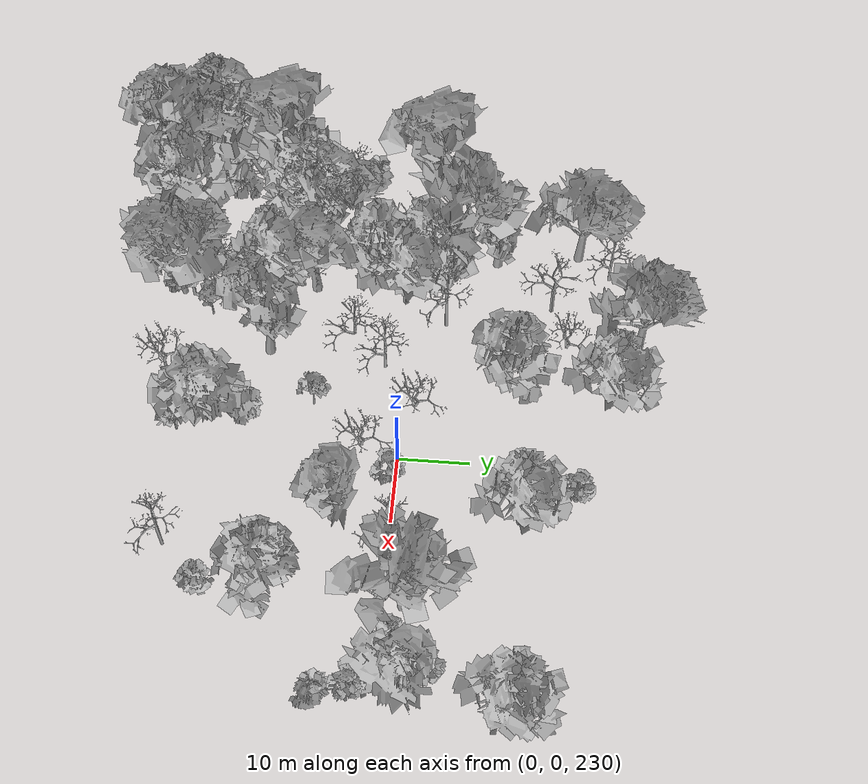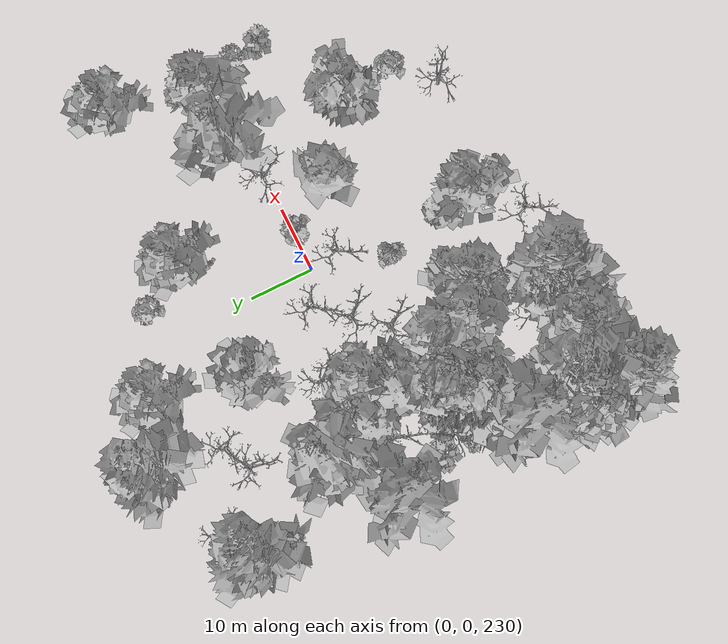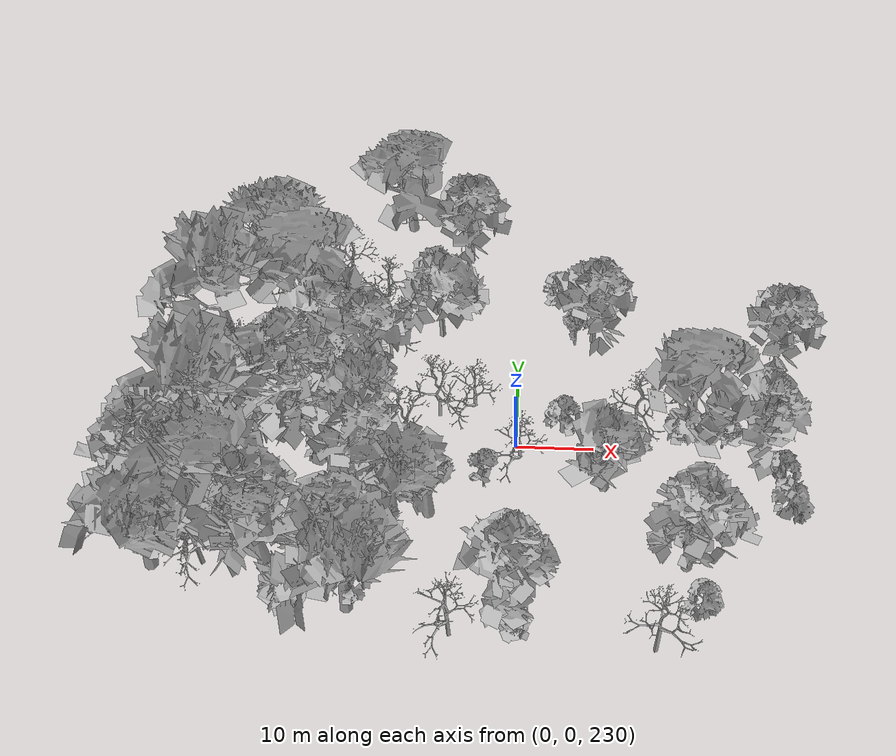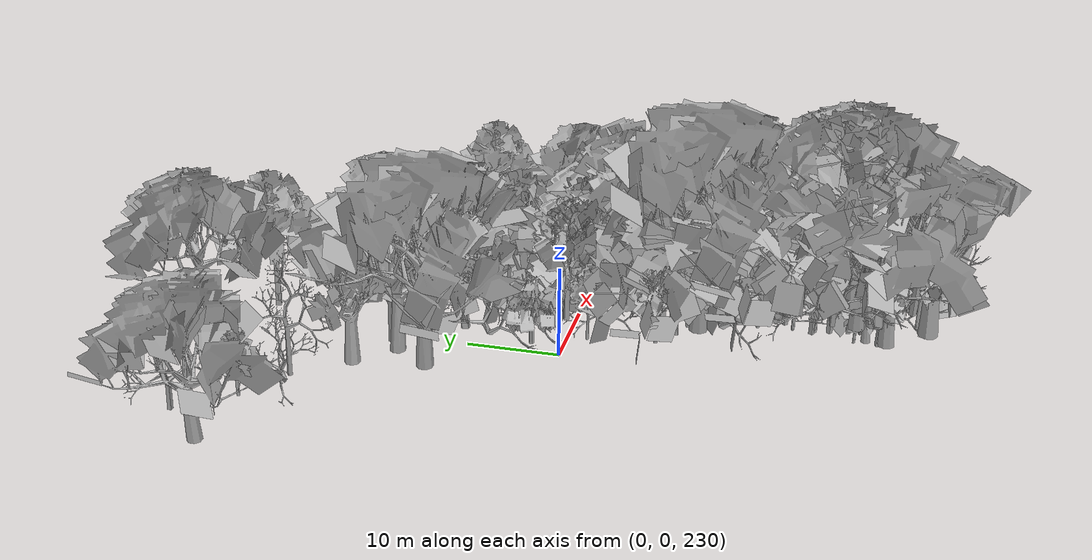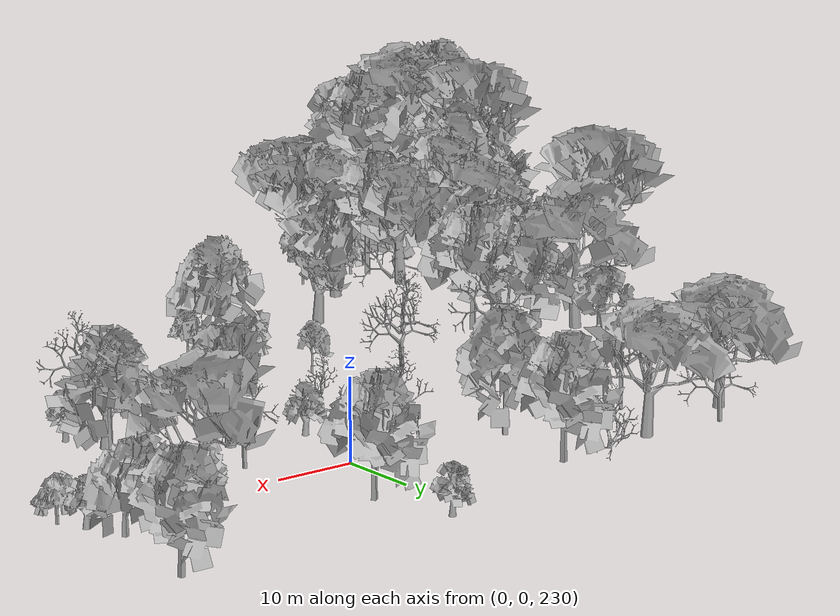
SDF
<sdf version="1.6">
 <world name="default">
  <light name="sun" type="directional">
   <pose>0 0 10 0 -0 0</pose>
   <diffuse>0.8 0.8 0.8 1</diffuse>
   <specular>0.2 0.2 0.2 1</specular>
   <attenuation>
    <range>1000</range>
    <constant>0.9</constant>
    <linear>0.01</linear>
    <quadratic>0.001</quadratic>
   </attenuation>
   <direction>-0.5 0.1 -0.9</direction>
  </light>
  <scene>
   <sky><clouds><speed>12</speed></clouds></sky>
   <ambient>0.4 0.4 0.4 1</ambient>
   <background>0.7 0.7 0.7 1</background>
   <shadows>1</shadows>
  </scene>
  <spherical_coordinates>
   <surface_model>EARTH_WGS84</surface_model>
   <latitude_deg>47.3977</latitude_deg>
   <longitude_deg>8.54559</longitude_deg>
   <elevation>0</elevation>
   <heading_deg>0</heading_deg>
  </spherical_coordinates>
  <physics name="default_physics" default="0" type="ode">
   <ode>
    <solver>
     <type>quick</type>
     <iters>100</iters>
     <sor>1.3</sor>
     <use_dynamic_moi_rescaling>0</use_dynamic_moi_rescaling>
    </solver>
    <constraints>
     <cfm>0</cfm>
     <erp>0.2</erp>
     <contact_max_correcting_vel>100</contact_max_correcting_vel>
     <contact_surface_layer>0.001</contact_surface_layer>
    </constraints>
   </ode>
   <max_step_size>0.002</max_step_size>
   <real_time_factor>1</real_time_factor>
   <real_time_update_rate>500</real_time_update_rate>
  </physics>
  <gravity>0 0 -9.8</gravity>
  <magnetic_field>6e-06 2.3e-05 -4.2e-05</magnetic_field>
  <atmosphere type="adiabatic"/>
  <model name="my_mesh0">
   <pose>-15.7155 -23.4892 244.522 0 -0 1.47947</pose>
   <static>1</static>
   <link name="body">
    <visual name="visual">
     <geometry><mesh><uri>model://trees/17.dae</uri><scale>1 1 1</scale></mesh></geometry>
    </visual>
    <collision name="collision">
     <geometry><mesh><uri>model://trees/17.dae</uri><scale>1 1 1</scale></mesh></geometry>
    </collision>
   </link>
  </model>
  <model name="my_mesh1">
   <pose>-16.1027 -17.4083 245.505 0 -0 0.03281</pose>
   <static>1</static>
   <link name="body">
    <visual name="visual">
     <geometry><mesh><uri>model://trees/14.dae</uri><scale>1 1 1</scale></mesh></geometry>
    </visual>
    <collision name="collision">
     <geometry><mesh><uri>model://trees/14.dae</uri><scale>1 1 1</scale></mesh></geometry>
    </collision>
   </link>
  </model>
  <model name="my_mesh2">
   <pose>-31.2538 -19.4431 251.59 0 0 -0.751936</pose>
   <static>1</static>
   <link name="body">
    <visual name="visual">
     <geometry><mesh><uri>model://trees/19.dae</uri><scale>1 1 1</scale></mesh></geometry>
    </visual>
    <collision name="collision">
     <geometry><mesh><uri>model://trees/19.dae</uri><scale>1 1 1</scale></mesh></geometry>
    </collision>
   </link>
  </model>
  <model name="my_mesh3">
   <pose>-9.20602 -17.858 240.662 0 -0 0.177548</pose>
   <static>1</static>
   <link name="body">
    <visual name="visual">
     <geometry><mesh><uri>model://trees/7.dae</uri><scale>1 1 1</scale></mesh></geometry>
    </visual>
    <collision name="collision">
     <geometry><mesh><uri>model://trees/7.dae</uri><scale>1 1 1</scale></mesh></geometry>
    </collision>
   </link>
  </model>
  <model name="my_mesh4">
   <pose>-26.4599 -22.8411 252.21 0 -0 1.06424</pose>
   <static>1</static>
   <link name="body">
    <visual name="visual">
     <geometry><mesh><uri>model://trees/4.dae</uri><scale>1 1 1</scale></mesh></geometry>
    </visual>
    <collision name="collision">
     <geometry><mesh><uri>model://trees/4.dae</uri><scale>1 1 1</scale></mesh></geometry>
    </collision>
   </link>
  </model>
  <model name="my_mesh5">
   <pose>-32.2418 -5.23204 248.775 0 0 -0.627613</pose>
   <static>1</static>
   <link name="body">
    <visual name="visual">
     <geometry><mesh><uri>model://trees/4.dae</uri><scale>1 1 1</scale></mesh></geometry>
    </visual>
    <collision name="collision">
     <geometry><mesh><uri>model://trees/4.dae</uri><scale>1 1 1</scale></mesh></geometry>
    </collision>
   </link>
  </model>
  <model name="my_mesh6">
   <pose>-34.3322 -26.2766 254.559 0 -0 0.266364</pose>
   <static>1</static>
   <link name="body">
    <visual name="visual">
     <geometry><mesh><uri>model://trees/19.dae</uri><scale>1 1 1</scale></mesh></geometry>
    </visual>
    <collision name="collision">
     <geometry><mesh><uri>model://trees/19.dae</uri><scale>1 1 1</scale></mesh></geometry>
    </collision>
   </link>
  </model>
  <model name="my_mesh7">
   <pose>-1.08096 -20.3787 236.523 0 0 -0.718987</pose>
   <static>1</static>
   <link name="body">
    <visual name="visual">
     <geometry><mesh><uri>model://trees/5.dae</uri><scale>1 1 1</scale></mesh></geometry>
    </visual>
    <collision name="collision">
     <geometry><mesh><uri>model://trees/5.dae</uri><scale>1 1 1</scale></mesh></geometry>
    </collision>
   </link>
  </model>
  <model name="my_mesh8">
   <pose>-19.4255 -30.334 247.314 0 -0 1.37649</pose>
   <static>1</static>
   <link name="body">
    <visual name="visual">
     <geometry><mesh><uri>model://trees/3.dae</uri><scale>1 1 1</scale></mesh></geometry>
    </visual>
    <collision name="collision">
     <geometry><mesh><uri>model://trees/3.dae</uri><scale>1 1 1</scale></mesh></geometry>
    </collision>
   </link>
  </model>
  <model name="my_mesh9">
   <pose>-19.9212 -15.767 247.114 0 0 -0.982602</pose>
   <static>1</static>
   <link name="body">
    <visual name="visual">
     <geometry><mesh><uri>model://trees/4.dae</uri><scale>1 1 1</scale></mesh></geometry>
    </visual>
    <collision name="collision">
     <geometry><mesh><uri>model://trees/4.dae</uri><scale>1 1 1</scale></mesh></geometry>
    </collision>
   </link>
  </model>
  <model name="my_mesh10">
   <pose>-32.4437 -22.831 253.199 0 0 -0.721256</pose>
   <static>1</static>
   <link name="body">
    <visual name="visual">
     <geometry><mesh><uri>model://trees/12.dae</uri><scale>1 1 1</scale></mesh></geometry>
    </visual>
    <collision name="collision">
     <geometry><mesh><uri>model://trees/12.dae</uri><scale>1 1 1</scale></mesh></geometry>
    </collision>
   </link>
  </model>
  <model name="my_mesh11">
   <pose>-30.1121 -14.8826 250.154 0 0 -1.34296</pose>
   <static>1</static>
   <link name="body">
    <visual name="visual">
     <geometry><mesh><uri>model://trees/12.dae</uri><scale>1 1 1</scale></mesh></geometry>
    </visual>
    <collision name="collision">
     <geometry><mesh><uri>model://trees/12.dae</uri><scale>1 1 1</scale></mesh></geometry>
    </collision>
   </link>
  </model>
  <model name="my_mesh12">
   <pose>-15.9013 -27.2478 244.295 0 0 -1.38929</pose>
   <static>1</static>
   <link name="body">
    <visual name="visual">
     <geometry><mesh><uri>model://trees/16.dae</uri><scale>1 1 1</scale></mesh></geometry>
    </visual>
    <collision name="collision">
     <geometry><mesh><uri>model://trees/16.dae</uri><scale>1 1 1</scale></mesh></geometry>
    </collision>
   </link>
  </model>
  <model name="my_mesh13">
   <pose>-17.1848 -13.9201 245.572 0 -0 0.860375</pose>
   <static>1</static>
   <link name="body">
    <visual name="visual">
     <geometry><mesh><uri>model://trees/18.dae</uri><scale>1 1 1</scale></mesh></geometry>
    </visual>
    <collision name="collision">
     <geometry><mesh><uri>model://trees/18.dae</uri><scale>1 1 1</scale></mesh></geometry>
    </collision>
   </link>
  </model>
  <model name="my_mesh14">
   <pose>-31.9217 -9.50754 249.492 0 -0 0.719928</pose>
   <static>1</static>
   <link name="body">
    <visual name="visual">
     <geometry><mesh><uri>model://trees/3.dae</uri><scale>1 1 1</scale></mesh></geometry>
    </visual>
    <collision name="collision">
     <geometry><mesh><uri>model://trees/3.dae</uri><scale>1 1 1</scale></mesh></geometry>
    </collision>
   </link>
  </model>
  <model name="my_mesh15">
   <pose>-29.7515 -25.2002 253.476 0 0 -1.45688</pose>
   <static>1</static>
   <link name="body">
    <visual name="visual">
     <geometry><mesh><uri>model://trees/15.dae</uri><scale>1 1 1</scale></mesh></geometry>
    </visual>
    <collision name="collision">
     <geometry><mesh><uri>model://trees/15.dae</uri><scale>1 1 1</scale></mesh></geometry>
    </collision>
   </link>
  </model>
  <model name="my_mesh16">
   <pose>-21.3706 -34.5123 248.794 0 -0 1.28205</pose>
   <static>1</static>
   <link name="body">
    <visual name="visual">
     <geometry><mesh><uri>model://trees/5.dae</uri><scale>1 1 1</scale></mesh></geometry>
    </visual>
    <collision name="collision">
     <geometry><mesh><uri>model://trees/5.dae</uri><scale>1 1 1</scale></mesh></geometry>
    </collision>
   </link>
  </model>
  <model name="my_mesh17">
   <pose>-24.5646 -11.1022 249.926 0 -0 0.623276</pose>
   <static>1</static>
   <link name="body">
    <visual name="visual">
     <geometry><mesh><uri>model://trees/15.dae</uri><scale>1 1 1</scale></mesh></geometry>
    </visual>
    <collision name="collision">
     <geometry><mesh><uri>model://trees/15.dae</uri><scale>1 1 1</scale></mesh></geometry>
    </collision>
   </link>
  </model>
  <model name="my_mesh18">
   <pose>-17.8361 -29.3478 245.97 0 -0 1.28886</pose>
   <static>1</static>
   <link name="body">
    <visual name="visual">
     <geometry><mesh><uri>model://trees/8.dae</uri><scale>1 1 1</scale></mesh></geometry>
    </visual>
    <collision name="collision">
     <geometry><mesh><uri>model://trees/8.dae</uri><scale>1 1 1</scale></mesh></geometry>
    </collision>
   </link>
  </model>
  <model name="my_mesh19">
   <pose>-29.8987 -28.5454 253.739 0 -0 0.715616</pose>
   <static>1</static>
   <link name="body">
    <visual name="visual">
     <geometry><mesh><uri>model://trees/9.dae</uri><scale>1 1 1</scale></mesh></geometry>
    </visual>
    <collision name="collision">
     <geometry><mesh><uri>model://trees/9.dae</uri><scale>1 1 1</scale></mesh></geometry>
    </collision>
   </link>
  </model>
  <model name="my_mesh20">
   <pose>-27.0359 -31.4978 252.692 0 0 -0.58924</pose>
   <static>1</static>
   <link name="body">
    <visual name="visual">
     <geometry><mesh><uri>model://trees/6.dae</uri><scale>1 1 1</scale></mesh></geometry>
    </visual>
    <collision name="collision">
     <geometry><mesh><uri>model://trees/6.dae</uri><scale>1 1 1</scale></mesh></geometry>
    </collision>
   </link>
  </model>
  <model name="my_mesh21">
   <pose>-30.5329 -30.4037 254.237 0 -0 0.12507</pose>
   <static>1</static>
   <link name="body">
    <visual name="visual">
     <geometry><mesh><uri>model://trees/18.dae</uri><scale>1 1 1</scale></mesh></geometry>
    </visual>
    <collision name="collision">
     <geometry><mesh><uri>model://trees/18.dae</uri><scale>1 1 1</scale></mesh></geometry>
    </collision>
   </link>
  </model>
  <model name="my_mesh22">
   <pose>-16.7224 -12.0977 245.352 0 0 -0.059344</pose>
   <static>1</static>
   <link name="body">
    <visual name="visual">
     <geometry><mesh><uri>model://trees/11.dae</uri><scale>1 1 1</scale></mesh></geometry>
    </visual>
    <collision name="collision">
     <geometry><mesh><uri>model://trees/11.dae</uri><scale>1 1 1</scale></mesh></geometry>
    </collision>
   </link>
  </model>
  <model name="my_mesh23">
   <pose>-22.5691 -11.0643 248.578 0 -0 0.955158</pose>
   <static>1</static>
   <link name="body">
    <visual name="visual">
     <geometry><mesh><uri>model://trees/11.dae</uri><scale>1 1 1</scale></mesh></geometry>
    </visual>
    <collision name="collision">
     <geometry><mesh><uri>model://trees/11.dae</uri><scale>1 1 1</scale></mesh></geometry>
    </collision>
   </link>
  </model>
  <model name="my_mesh24">
   <pose>-25.9963 -25.0969 252.592 0 -0 0.03266</pose>
   <static>1</static>
   <link name="body">
    <visual name="visual">
     <geometry><mesh><uri>model://trees/6.dae</uri><scale>1 1 1</scale></mesh></geometry>
    </visual>
    <collision name="collision">
     <geometry><mesh><uri>model://trees/6.dae</uri><scale>1 1 1</scale></mesh></geometry>
    </collision>
   </link>
  </model>
  <model name="my_mesh25">
   <pose>-15.5002 -19.8689 244.991 0 0 -1.0327</pose>
   <static>1</static>
   <link name="body">
    <visual name="visual">
     <geometry><mesh><uri>model://trees/5.dae</uri><scale>1 1 1</scale></mesh></geometry>
    </visual>
    <collision name="collision">
     <geometry><mesh><uri>model://trees/5.dae</uri><scale>1 1 1</scale></mesh></geometry>
    </collision>
   </link>
  </model>
  <model name="my_mesh26">
   <pose>-17.5292 -27.4039 245.811 0 0 -0.513174</pose>
   <static>1</static>
   <link name="body">
    <visual name="visual">
     <geometry><mesh><uri>model://trees/17.dae</uri><scale>1 1 1</scale></mesh></geometry>
    </visual>
    <collision name="collision">
     <geometry><mesh><uri>model://trees/17.dae</uri><scale>1 1 1</scale></mesh></geometry>
    </collision>
   </link>
  </model>
  <model name="my_mesh27">
   <pose>-33.7248 -33.7869 253.946 0 0 -0.971123</pose>
   <static>1</static>
   <link name="body">
    <visual name="visual">
     <geometry><mesh><uri>model://trees/8.dae</uri><scale>1 1 1</scale></mesh></geometry>
    </visual>
    <collision name="collision">
     <geometry><mesh><uri>model://trees/8.dae</uri><scale>1 1 1</scale></mesh></geometry>
    </collision>
   </link>
  </model>
  <model name="my_mesh28">
   <pose>-14.2924 -24.1483 243.357 0 0 -0.723354</pose>
   <static>1</static>
   <link name="body">
    <visual name="visual">
     <geometry><mesh><uri>model://trees/2.dae</uri><scale>1 1 1</scale></mesh></geometry>
    </visual>
    <collision name="collision">
     <geometry><mesh><uri>model://trees/2.dae</uri><scale>1 1 1</scale></mesh></geometry>
    </collision>
   </link>
  </model>
  <model name="my_mesh29">
   <pose>-25.8097 8.13636 242.987 0 -0 0.570809</pose>
   <static>1</static>
   <link name="body">
    <visual name="visual">
     <geometry><mesh><uri>model://trees/10.dae</uri><scale>1 1 1</scale></mesh></geometry>
    </visual>
    <collision name="collision">
     <geometry><mesh><uri>model://trees/10.dae</uri><scale>1 1 1</scale></mesh></geometry>
    </collision>
   </link>
  </model>
  <model name="my_mesh30">
   <pose>-32.1929 -16.131 250.999 0 0 -0.71</pose>
   <static>1</static>
   <link name="body">
    <visual name="visual">
     <geometry><mesh><uri>model://trees/12.dae</uri><scale>1 1 1</scale></mesh></geometry>
    </visual>
    <collision name="collision">
     <geometry><mesh><uri>model://trees/12.dae</uri><scale>1 1 1</scale></mesh></geometry>
    </collision>
   </link>
  </model>
  <model name="my_mesh31">
   <pose>-13.4483 -19.0749 243.439 0 -0 0.33608</pose>
   <static>1</static>
   <link name="body">
    <visual name="visual">
     <geometry><mesh><uri>model://trees/3.dae</uri><scale>1 1 1</scale></mesh></geometry>
    </visual>
    <collision name="collision">
     <geometry><mesh><uri>model://trees/3.dae</uri><scale>1 1 1</scale></mesh></geometry>
    </collision>
   </link>
  </model>
  <model name="my_mesh32">
   <pose>-26.3778 -14.6528 250.714 0 -0 1.49896</pose>
   <static>1</static>
   <link name="body">
    <visual name="visual">
     <geometry><mesh><uri>model://trees/15.dae</uri><scale>1 1 1</scale></mesh></geometry>
    </visual>
    <collision name="collision">
     <geometry><mesh><uri>model://trees/15.dae</uri><scale>1 1 1</scale></mesh></geometry>
    </collision>
   </link>
  </model>
  <model name="my_mesh33">
   <pose>-6.04848 -31.6946 238.536 0 0 -0.387472</pose>
   <static>1</static>
   <link name="body">
    <visual name="visual">
     <geometry><mesh><uri>model://trees/17.dae</uri><scale>1 1 1</scale></mesh></geometry>
    </visual>
    <collision name="collision">
     <geometry><mesh><uri>model://trees/17.dae</uri><scale>1 1 1</scale></mesh></geometry>
    </collision>
   </link>
  </model>
  <model name="my_mesh34">
   <pose>21.0863 1.30854 230.77 0 -0 0.84263</pose>
   <static>1</static>
   <link name="body">
    <visual name="visual">
     <geometry><mesh><uri>model://trees/5.dae</uri><scale>1 1 1</scale></mesh></geometry>
    </visual>
    <collision name="collision">
     <geometry><mesh><uri>model://trees/5.dae</uri><scale>1 1 1</scale></mesh></geometry>
    </collision>
   </link>
  </model>
  <model name="my_mesh35">
   <pose>-19.7569 -30.2577 247.917 0 0 -0.735656</pose>
   <static>1</static>
   <link name="body">
    <visual name="visual">
     <geometry><mesh><uri>model://trees/1.dae</uri><scale>1 1 1</scale></mesh></geometry>
    </visual>
    <collision name="collision">
     <geometry><mesh><uri>model://trees/1.dae</uri><scale>1 1 1</scale></mesh></geometry>
    </collision>
   </link>
  </model>
  <model name="my_mesh36">
   <pose>-22.187 20.1796 236.851 0 0 -0.003993</pose>
   <static>1</static>
   <link name="body">
    <visual name="visual">
     <geometry><mesh><uri>model://trees/16.dae</uri><scale>1 1 1</scale></mesh></geometry>
    </visual>
    <collision name="collision">
     <geometry><mesh><uri>model://trees/16.dae</uri><scale>1 1 1</scale></mesh></geometry>
    </collision>
   </link>
  </model>
  <model name="my_mesh37">
   <pose>-24.1015 -13.7631 249.865 0 0 -0.321282</pose>
   <static>1</static>
   <link name="body">
    <visual name="visual">
     <geometry><mesh><uri>model://trees/0.dae</uri><scale>1 1 1</scale></mesh></geometry>
    </visual>
    <collision name="collision">
     <geometry><mesh><uri>model://trees/0.dae</uri><scale>1 1 1</scale></mesh></geometry>
    </collision>
   </link>
  </model>
  <model name="my_mesh38">
   <pose>-29.163 -32.9165 253.151 0 -0 0.013894</pose>
   <static>1</static>
   <link name="body">
    <visual name="visual">
     <geometry><mesh><uri>model://trees/17.dae</uri><scale>1 1 1</scale></mesh></geometry>
    </visual>
    <collision name="collision">
     <geometry><mesh><uri>model://trees/17.dae</uri><scale>1 1 1</scale></mesh></geometry>
    </collision>
   </link>
  </model>
  <model name="my_mesh39">
   <pose>-34.5614 -15.0863 251.296 0 -0 1.54877</pose>
   <static>1</static>
   <link name="body">
    <visual name="visual">
     <geometry><mesh><uri>model://trees/6.dae</uri><scale>1 1 1</scale></mesh></geometry>
    </visual>
    <collision name="collision">
     <geometry><mesh><uri>model://trees/6.dae</uri><scale>1 1 1</scale></mesh></geometry>
    </collision>
   </link>
  </model>
  <model name="my_mesh40">
   <pose>-25.1173 -14.7524 250.554 0 -0 0.273953</pose>
   <static>1</static>
   <link name="body">
    <visual name="visual">
     <geometry><mesh><uri>model://trees/12.dae</uri><scale>1 1 1</scale></mesh></geometry>
    </visual>
    <collision name="collision">
     <geometry><mesh><uri>model://trees/12.dae</uri><scale>1 1 1</scale></mesh></geometry>
    </collision>
   </link>
  </model>
  <model name="my_mesh41">
   <pose>-27.0428 -0.27112 246.414 0 0 -0.32774</pose>
   <static>1</static>
   <link name="body">
    <visual name="visual">
     <geometry><mesh><uri>model://trees/18.dae</uri><scale>1 1 1</scale></mesh></geometry>
    </visual>
    <collision name="collision">
     <geometry><mesh><uri>model://trees/18.dae</uri><scale>1 1 1</scale></mesh></geometry>
    </collision>
   </link>
  </model>
  <model name="my_mesh42">
   <pose>20.5854 -17.9262 231.396 0 -0 0.93868</pose>
   <static>1</static>
   <link name="body">
    <visual name="visual">
     <geometry><mesh><uri>model://trees/7.dae</uri><scale>1 1 1</scale></mesh></geometry>
    </visual>
    <collision name="collision">
     <geometry><mesh><uri>model://trees/7.dae</uri><scale>1 1 1</scale></mesh></geometry>
    </collision>
   </link>
  </model>
  <model name="my_mesh43">
   <pose>-18.8214 -26.0228 246.917 0 -0 0.228266</pose>
   <static>1</static>
   <link name="body">
    <visual name="visual">
     <geometry><mesh><uri>model://trees/18.dae</uri><scale>1 1 1</scale></mesh></geometry>
    </visual>
    <collision name="collision">
     <geometry><mesh><uri>model://trees/18.dae</uri><scale>1 1 1</scale></mesh></geometry>
    </collision>
   </link>
  </model>
  <model name="my_mesh44">
   <pose>-12.9885 -19.4347 242.9 0 0 -0.74034</pose>
   <static>1</static>
   <link name="body">
    <visual name="visual">
     <geometry><mesh><uri>model://trees/8.dae</uri><scale>1 1 1</scale></mesh></geometry>
    </visual>
    <collision name="collision">
     <geometry><mesh><uri>model://trees/8.dae</uri><scale>1 1 1</scale></mesh></geometry>
    </collision>
   </link>
  </model>
  <model name="my_mesh45">
   <pose>-33.1871 24.1112 235.967 0 -0 0.381298</pose>
   <static>1</static>
   <link name="body">
    <visual name="visual">
     <geometry><mesh><uri>model://trees/9.dae</uri><scale>1 1 1</scale></mesh></geometry>
    </visual>
    <collision name="collision">
     <geometry><mesh><uri>model://trees/9.dae</uri><scale>1 1 1</scale></mesh></geometry>
    </collision>
   </link>
  </model>
  <model name="my_mesh46">
   <pose>-29.3349 28.5181 236.104 0 -0 0.74262</pose>
   <static>1</static>
   <link name="body">
    <visual name="visual">
     <geometry><mesh><uri>model://trees/17.dae</uri><scale>1 1 1</scale></mesh></geometry>
    </visual>
    <collision name="collision">
     <geometry><mesh><uri>model://trees/17.dae</uri><scale>1 1 1</scale></mesh></geometry>
    </collision>
   </link>
  </model>
  <model name="my_mesh47">
   <pose>-32.9897 -26.5821 254.597 0 0 -0.814261</pose>
   <static>1</static>
   <link name="body">
    <visual name="visual">
     <geometry><mesh><uri>model://trees/15.dae</uri><scale>1 1 1</scale></mesh></geometry>
    </visual>
    <collision name="collision">
     <geometry><mesh><uri>model://trees/15.dae</uri><scale>1 1 1</scale></mesh></geometry>
    </collision>
   </link>
  </model>
  <model name="my_mesh48">
   <pose>-15.6975 5.51504 240.417 0 -0 1.01358</pose>
   <static>1</static>
   <link name="body">
    <visual name="visual">
     <geometry><mesh><uri>model://trees/16.dae</uri><scale>1 1 1</scale></mesh></geometry>
    </visual>
    <collision name="collision">
     <geometry><mesh><uri>model://trees/16.dae</uri><scale>1 1 1</scale></mesh></geometry>
    </collision>
   </link>
  </model>
  <model name="my_mesh49">
   <pose>-29.2544 -7.26261 249.602 0 -0 1.23058</pose>
   <static>1</static>
   <link name="body">
    <visual name="visual">
     <geometry><mesh><uri>model://trees/17.dae</uri><scale>1 1 1</scale></mesh></geometry>
    </visual>
    <collision name="collision">
     <geometry><mesh><uri>model://trees/17.dae</uri><scale>1 1 1</scale></mesh></geometry>
    </collision>
   </link>
  </model>
  <model name="my_mesh50">
   <pose>-17.6655 -0.141579 242.402 0 0 -0.147944</pose>
   <static>1</static>
   <link name="body">
    <visual name="visual">
     <geometry><mesh><uri>model://trees/14.dae</uri><scale>1 1 1</scale></mesh></geometry>
    </visual>
    <collision name="collision">
     <geometry><mesh><uri>model://trees/14.dae</uri><scale>1 1 1</scale></mesh></geometry>
    </collision>
   </link>
  </model>
  <model name="my_mesh51">
   <pose>-12.7096 -6.75818 241.315 0 -0 0.679654</pose>
   <static>1</static>
   <link name="body">
    <visual name="visual">
     <geometry><mesh><uri>model://trees/18.dae</uri><scale>1 1 1</scale></mesh></geometry>
    </visual>
    <collision name="collision">
     <geometry><mesh><uri>model://trees/18.dae</uri><scale>1 1 1</scale></mesh></geometry>
    </collision>
   </link>
  </model>
  <model name="my_mesh52">
   <pose>-3.38463 -11.4325 237.224 0 -0 0.494562</pose>
   <static>1</static>
   <link name="body">
    <visual name="visual">
     <geometry><mesh><uri>model://trees/6.dae</uri><scale>1 1 1</scale></mesh></geometry>
    </visual>
    <collision name="collision">
     <geometry><mesh><uri>model://trees/6.dae</uri><scale>1 1 1</scale></mesh></geometry>
    </collision>
   </link>
  </model>
  <model name="my_mesh53">
   <pose>-15.3273 -28.8022 244.181 0 0 -0.704435</pose>
   <static>1</static>
   <link name="body">
    <visual name="visual">
     <geometry><mesh><uri>model://trees/17.dae</uri><scale>1 1 1</scale></mesh></geometry>
    </visual>
    <collision name="collision">
     <geometry><mesh><uri>model://trees/17.dae</uri><scale>1 1 1</scale></mesh></geometry>
    </collision>
   </link>
  </model>
  <model name="my_mesh54">
   <pose>-13.2781 -26.067 242.855 0 0 -0.299756</pose>
   <static>1</static>
   <link name="body">
    <visual name="visual">
     <geometry><mesh><uri>model://trees/3.dae</uri><scale>1 1 1</scale></mesh></geometry>
    </visual>
    <collision name="collision">
     <geometry><mesh><uri>model://trees/3.dae</uri><scale>1 1 1</scale></mesh></geometry>
    </collision>
   </link>
  </model>
  <model name="my_mesh55">
   <pose>-0.489117 -25.6037 236.194 0 -0 0.166783</pose>
   <static>1</static>
   <link name="body">
    <visual name="visual">
     <geometry><mesh><uri>model://trees/15.dae</uri><scale>1 1 1</scale></mesh></geometry>
    </visual>
    <collision name="collision">
     <geometry><mesh><uri>model://trees/15.dae</uri><scale>1 1 1</scale></mesh></geometry>
    </collision>
   </link>
  </model>
  <model name="my_mesh56">
   <pose>-15.9331 -30.2962 243.863 0 0 -0.223966</pose>
   <static>1</static>
   <link name="body">
    <visual name="visual">
     <geometry><mesh><uri>model://trees/0.dae</uri><scale>1 1 1</scale></mesh></geometry>
    </visual>
    <collision name="collision">
     <geometry><mesh><uri>model://trees/0.dae</uri><scale>1 1 1</scale></mesh></geometry>
    </collision>
   </link>
  </model>
  <model name="my_mesh57">
   <pose>-18.1621 -30.7873 246.535 0 -0 0.150982</pose>
   <static>1</static>
   <link name="body">
    <visual name="visual">
     <geometry><mesh><uri>model://trees/7.dae</uri><scale>1 1 1</scale></mesh></geometry>
    </visual>
    <collision name="collision">
     <geometry><mesh><uri>model://trees/7.dae</uri><scale>1 1 1</scale></mesh></geometry>
    </collision>
   </link>
  </model>
  <model name="my_mesh58">
   <pose>-31.5957 -19.5574 252.122 0 -0 0.347583</pose>
   <static>1</static>
   <link name="body">
    <visual name="visual">
     <geometry><mesh><uri>model://trees/0.dae</uri><scale>1 1 1</scale></mesh></geometry>
    </visual>
    <collision name="collision">
     <geometry><mesh><uri>model://trees/0.dae</uri><scale>1 1 1</scale></mesh></geometry>
    </collision>
   </link>
  </model>
  <model name="my_mesh59">
   <pose>0.750638 -4.71625 234.351 0 0 -0.461812</pose>
   <static>1</static>
   <link name="body">
    <visual name="visual">
     <geometry><mesh><uri>model://trees/18.dae</uri><scale>1 1 1</scale></mesh></geometry>
    </visual>
    <collision name="collision">
     <geometry><mesh><uri>model://trees/18.dae</uri><scale>1 1 1</scale></mesh></geometry>
    </collision>
   </link>
  </model>
  <model name="my_mesh60">
   <pose>0.752736 -29.7223 235.105 0 0 -0.200473</pose>
   <static>1</static>
   <link name="body">
    <visual name="visual">
     <geometry><mesh><uri>model://trees/2.dae</uri><scale>1 1 1</scale></mesh></geometry>
    </visual>
    <collision name="collision">
     <geometry><mesh><uri>model://trees/2.dae</uri><scale>1 1 1</scale></mesh></geometry>
    </collision>
   </link>
  </model>
  <model name="my_mesh61">
   <pose>-16.2996 -31.9578 243.911 0 0 -0.279122</pose>
   <static>1</static>
   <link name="body">
    <visual name="visual">
     <geometry><mesh><uri>model://trees/9.dae</uri><scale>1 1 1</scale></mesh></geometry>
    </visual>
    <collision name="collision">
     <geometry><mesh><uri>model://trees/9.dae</uri><scale>1 1 1</scale></mesh></geometry>
    </collision>
   </link>
  </model>
  <model name="my_mesh62">
   <pose>-24.6843 -29.9258 251.536 0 0 -0.527506</pose>
   <static>1</static>
   <link name="body">
    <visual name="visual">
     <geometry><mesh><uri>model://trees/14.dae</uri><scale>1 1 1</scale></mesh></geometry>
    </visual>
    <collision name="collision">
     <geometry><mesh><uri>model://trees/14.dae</uri><scale>1 1 1</scale></mesh></geometry>
    </collision>
   </link>
  </model>
  <model name="my_mesh63">
   <pose>16.4618 -29.1475 231.889 0 -0 1.15457</pose>
   <static>1</static>
   <link name="body">
    <visual name="visual">
     <geometry><mesh><uri>model://trees/16.dae</uri><scale>1 1 1</scale></mesh></geometry>
    </visual>
    <collision name="collision">
     <geometry><mesh><uri>model://trees/16.dae</uri><scale>1 1 1</scale></mesh></geometry>
    </collision>
   </link>
  </model>
  <model name="my_mesh64">
   <pose>-27.0316 -7.36458 249.502 0 -0 1.23172</pose>
   <static>1</static>
   <link name="body">
    <visual name="visual">
     <geometry><mesh><uri>model://trees/7.dae</uri><scale>1 1 1</scale></mesh></geometry>
    </visual>
    <collision name="collision">
     <geometry><mesh><uri>model://trees/7.dae</uri><scale>1 1 1</scale></mesh></geometry>
    </collision>
   </link>
  </model>
  <model name="my_mesh65">
   <pose>-23.8114 -31.0664 250.998 0 0 -1.49899</pose>
   <static>1</static>
   <link name="body">
    <visual name="visual">
     <geometry><mesh><uri>model://trees/11.dae</uri><scale>1 1 1</scale></mesh></geometry>
    </visual>
    <collision name="collision">
     <geometry><mesh><uri>model://trees/11.dae</uri><scale>1 1 1</scale></mesh></geometry>
    </collision>
   </link>
  </model>
  <model name="my_mesh66">
   <pose>-34.0546 -26.064 254.559 0 -0 0.701487</pose>
   <static>1</static>
   <link name="body">
    <visual name="visual">
     <geometry><mesh><uri>model://trees/14.dae</uri><scale>1 1 1</scale></mesh></geometry>
    </visual>
    <collision name="collision">
     <geometry><mesh><uri>model://trees/14.dae</uri><scale>1 1 1</scale></mesh></geometry>
    </collision>
   </link>
  </model>
  <model name="my_mesh67">
   <pose>22.0056 -23.8443 231.025 0 0 -1.4393</pose>
   <static>1</static>
   <link name="body">
    <visual name="visual">
     <geometry><mesh><uri>model://trees/1.dae</uri><scale>1 1 1</scale></mesh></geometry>
    </visual>
    <collision name="collision">
     <geometry><mesh><uri>model://trees/1.dae</uri><scale>1 1 1</scale></mesh></geometry>
    </collision>
   </link>
  </model>
  <model name="my_mesh68">
   <pose>-20.736 -3.49941 245.809 0 0 -1.24863</pose>
   <static>1</static>
   <link name="body">
    <visual name="visual">
     <geometry><mesh><uri>model://trees/12.dae</uri><scale>1 1 1</scale></mesh></geometry>
    </visual>
    <collision name="collision">
     <geometry><mesh><uri>model://trees/12.dae</uri><scale>1 1 1</scale></mesh></geometry>
    </collision>
   </link>
  </model>
  <model name="my_mesh69">
   <pose>-29.4557 -28.4321 253.739 0 0 -0.338904</pose>
   <static>1</static>
   <link name="body">
    <visual name="visual">
     <geometry><mesh><uri>model://trees/19.dae</uri><scale>1 1 1</scale></mesh></geometry>
    </visual>
    <collision name="collision">
     <geometry><mesh><uri>model://trees/19.dae</uri><scale>1 1 1</scale></mesh></geometry>
    </collision>
   </link>
  </model>
  <model name="my_mesh70">
   <pose>-20.0514 -6.46663 246.054 0 0 -1.0662</pose>
   <static>1</static>
   <link name="body">
    <visual name="visual">
     <geometry><mesh><uri>model://trees/17.dae</uri><scale>1 1 1</scale></mesh></geometry>
    </visual>
    <collision name="collision">
     <geometry><mesh><uri>model://trees/17.dae</uri><scale>1 1 1</scale></mesh></geometry>
    </collision>
   </link>
  </model>
  <model name="my_mesh71">
   <pose>-33.5423 -33.0424 254.262 0 -0 0.565753</pose>
   <static>1</static>
   <link name="body">
    <visual name="visual">
     <geometry><mesh><uri>model://trees/2.dae</uri><scale>1 1 1</scale></mesh></geometry>
    </visual>
    <collision name="collision">
     <geometry><mesh><uri>model://trees/2.dae</uri><scale>1 1 1</scale></mesh></geometry>
    </collision>
   </link>
  </model>
  <model name="my_mesh72">
   <pose>9.8527 16.831 232.038 0 0 -0.229702</pose>
   <static>1</static>
   <link name="body">
    <visual name="visual">
     <geometry><mesh><uri>model://trees/14.dae</uri><scale>1 1 1</scale></mesh></geometry>
    </visual>
    <collision name="collision">
     <geometry><mesh><uri>model://trees/14.dae</uri><scale>1 1 1</scale></mesh></geometry>
    </collision>
   </link>
  </model>
  <model name="my_mesh73">
   <pose>7.41981 14.2835 234.107 0 -0 0.016615</pose>
   <static>1</static>
   <link name="body">
    <visual name="visual">
     <geometry><mesh><uri>model://trees/3.dae</uri><scale>1 1 1</scale></mesh></geometry>
    </visual>
    <collision name="collision">
     <geometry><mesh><uri>model://trees/3.dae</uri><scale>1 1 1</scale></mesh></geometry>
    </collision>
   </link>
  </model>
  <model name="my_mesh74">
   <pose>34.9589 16.3658 228.623 0 0 -0.692963</pose>
   <static>1</static>
   <link name="body">
    <visual name="visual">
     <geometry><mesh><uri>model://trees/14.dae</uri><scale>1 1 1</scale></mesh></geometry>
    </visual>
    <collision name="collision">
     <geometry><mesh><uri>model://trees/14.dae</uri><scale>1 1 1</scale></mesh></geometry>
    </collision>
   </link>
  </model>
  <model name="my_mesh75">
   <pose>21.2876 -15.9523 231.644 0 -0 1.55385</pose>
   <static>1</static>
   <link name="body">
    <visual name="visual">
     <geometry><mesh><uri>model://trees/15.dae</uri><scale>1 1 1</scale></mesh></geometry>
    </visual>
    <collision name="collision">
     <geometry><mesh><uri>model://trees/15.dae</uri><scale>1 1 1</scale></mesh></geometry>
    </collision>
   </link>
  </model>
  <model name="my_mesh76">
   <pose>-23.2702 2.82054 244.557 0 0 -0.686217</pose>
   <static>1</static>
   <link name="body">
    <visual name="visual">
     <geometry><mesh><uri>model://trees/12.dae</uri><scale>1 1 1</scale></mesh></geometry>
    </visual>
    <collision name="collision">
     <geometry><mesh><uri>model://trees/12.dae</uri><scale>1 1 1</scale></mesh></geometry>
    </collision>
   </link>
  </model>
  <model name="my_mesh77">
   <pose>-9.09775 -2.26265 238.969 0 -0 0.852826</pose>
   <static>1</static>
   <link name="body">
    <visual name="visual">
     <geometry><mesh><uri>model://trees/17.dae</uri><scale>1 1 1</scale></mesh></geometry>
    </visual>
    <collision name="collision">
     <geometry><mesh><uri>model://trees/17.dae</uri><scale>1 1 1</scale></mesh></geometry>
    </collision>
   </link>
  </model>
  <model name="my_mesh78">
   <pose>-5.10175 2.15057 235.766 0 0 -0.588782</pose>
   <static>1</static>
   <link name="body">
    <visual name="visual">
     <geometry><mesh><uri>model://trees/18.dae</uri><scale>1 1 1</scale></mesh></geometry>
    </visual>
    <collision name="collision">
     <geometry><mesh><uri>model://trees/18.dae</uri><scale>1 1 1</scale></mesh></geometry>
    </collision>
   </link>
  </model>
  <model name="my_mesh79">
   <pose>14.8648 0.30348 232.466 0 -0 0.70456</pose>
   <static>1</static>
   <link name="body">
    <visual name="visual">
     <geometry><mesh><uri>model://trees/16.dae</uri><scale>1 1 1</scale></mesh></geometry>
    </visual>
    <collision name="collision">
     <geometry><mesh><uri>model://trees/16.dae</uri><scale>1 1 1</scale></mesh></geometry>
    </collision>
   </link>
  </model>
  <model name="my_mesh80">
   <pose>-6.95674 28.2516 235.818 0 0 -0.494846</pose>
   <static>1</static>
   <link name="body">
    <visual name="visual">
     <geometry><mesh><uri>model://trees/14.dae</uri><scale>1 1 1</scale></mesh></geometry>
    </visual>
    <collision name="collision">
     <geometry><mesh><uri>model://trees/14.dae</uri><scale>1 1 1</scale></mesh></geometry>
    </collision>
   </link>
  </model>
  <model name="my_mesh81">
   <pose>-33.467 19.4305 241.158 0 0 -0.19933</pose>
   <static>1</static>
   <link name="body">
    <visual name="visual">
     <geometry><mesh><uri>model://trees/6.dae</uri><scale>1 1 1</scale></mesh></geometry>
    </visual>
    <collision name="collision">
     <geometry><mesh><uri>model://trees/6.dae</uri><scale>1 1 1</scale></mesh></geometry>
    </collision>
   </link>
  </model>
  <model name="my_mesh82">
   <pose>-23.3521 -10.1678 248.52 0 -0 1.4035</pose>
   <static>1</static>
   <link name="body">
    <visual name="visual">
     <geometry><mesh><uri>model://trees/8.dae</uri><scale>1 1 1</scale></mesh></geometry>
    </visual>
    <collision name="collision">
     <geometry><mesh><uri>model://trees/8.dae</uri><scale>1 1 1</scale></mesh></geometry>
    </collision>
   </link>
  </model>
  <model name="my_mesh83">
   <pose>-26.307 12.1477 241.541 0 0 -1.30258</pose>
   <static>1</static>
   <link name="body">
    <visual name="visual">
     <geometry><mesh><uri>model://trees/7.dae</uri><scale>1 1 1</scale></mesh></geometry>
    </visual>
    <collision name="collision">
     <geometry><mesh><uri>model://trees/7.dae</uri><scale>1 1 1</scale></mesh></geometry>
    </collision>
   </link>
  </model>
  <model name="my_mesh84">
   <pose>-10.1811 14.6068 234.94 0 0 -1.32567</pose>
   <static>1</static>
   <link name="body">
    <visual name="visual">
     <geometry><mesh><uri>model://trees/14.dae</uri><scale>1 1 1</scale></mesh></geometry>
    </visual>
    <collision name="collision">
     <geometry><mesh><uri>model://trees/14.dae</uri><scale>1 1 1</scale></mesh></geometry>
    </collision>
   </link>
  </model>
  <model name="my_mesh85">
   <pose>5.92185 -0.454825 234.329 0 -0 0.07545</pose>
   <static>1</static>
   <link name="body">
    <visual name="visual">
     <geometry><mesh><uri>model://trees/1.dae</uri><scale>1 1 1</scale></mesh></geometry>
    </visual>
    <collision name="collision">
     <geometry><mesh><uri>model://trees/1.dae</uri><scale>1 1 1</scale></mesh></geometry>
    </collision>
   </link>
  </model>
  <model name="my_mesh86">
   <pose>34.1986 -7.686 227.999 0 0 -1.05672</pose>
   <static>1</static>
   <link name="body">
    <visual name="visual">
     <geometry><mesh><uri>model://trees/4.dae</uri><scale>1 1 1</scale></mesh></geometry>
    </visual>
    <collision name="collision">
     <geometry><mesh><uri>model://trees/4.dae</uri><scale>1 1 1</scale></mesh></geometry>
    </collision>
   </link>
  </model>
  <model name="my_mesh87">
   <pose>-31.9132 -17.8418 251.371 0 0 -1.28627</pose>
   <static>1</static>
   <link name="body">
    <visual name="visual">
     <geometry><mesh><uri>model://trees/10.dae</uri><scale>1 1 1</scale></mesh></geometry>
    </visual>
    <collision name="collision">
     <geometry><mesh><uri>model://trees/10.dae</uri><scale>1 1 1</scale></mesh></geometry>
    </collision>
   </link>
  </model>
  <model name="my_mesh88">
   <pose>-21.6423 6.14135 243.353 0 0 -1.32965</pose>
   <static>1</static>
   <link name="body">
    <visual name="visual">
     <geometry><mesh><uri>model://trees/7.dae</uri><scale>1 1 1</scale></mesh></geometry>
    </visual>
    <collision name="collision">
     <geometry><mesh><uri>model://trees/7.dae</uri><scale>1 1 1</scale></mesh></geometry>
    </collision>
   </link>
  </model>
  <model name="my_mesh89">
   <pose>32.2061 2.3143 228.811 0 0 -0.349272</pose>
   <static>1</static>
   <link name="body">
    <visual name="visual">
     <geometry><mesh><uri>model://trees/13.dae</uri><scale>1 1 1</scale></mesh></geometry>
    </visual>
    <collision name="collision">
     <geometry><mesh><uri>model://trees/13.dae</uri><scale>1 1 1</scale></mesh></geometry>
    </collision>
   </link>
  </model>
  <model name="my_mesh90">
   <pose>-18.2461 22.7142 233.835 0 0 -1.12947</pose>
   <static>1</static>
   <link name="body">
    <visual name="visual">
     <geometry><mesh><uri>model://trees/18.dae</uri><scale>1 1 1</scale></mesh></geometry>
    </visual>
    <collision name="collision">
     <geometry><mesh><uri>model://trees/18.dae</uri><scale>1 1 1</scale></mesh></geometry>
    </collision>
   </link>
  </model>
  <model name="my_mesh91">
   <pose>33.4476 -3.25636 228.464 0 0 -0.434865</pose>
   <static>1</static>
   <link name="body">
    <visual name="visual">
     <geometry><mesh><uri>model://trees/0.dae</uri><scale>1 1 1</scale></mesh></geometry>
    </visual>
    <collision name="collision">
     <geometry><mesh><uri>model://trees/0.dae</uri><scale>1 1 1</scale></mesh></geometry>
    </collision>
   </link>
  </model>
  <model name="my_mesh92">
   <pose>26.4638 1.29321 229.498 0 -0 0.795882</pose>
   <static>1</static>
   <link name="body">
    <visual name="visual">
     <geometry><mesh><uri>model://trees/2.dae</uri><scale>1 1 1</scale></mesh></geometry>
    </visual>
    <collision name="collision">
     <geometry><mesh><uri>model://trees/2.dae</uri><scale>1 1 1</scale></mesh></geometry>
    </collision>
   </link>
  </model>
  <model name="my_mesh93">
   <pose>-15.4046 32.0916 237.935 0 -0 0.956189</pose>
   <static>1</static>
   <link name="body">
    <visual name="visual">
     <geometry><mesh><uri>model://trees/9.dae</uri><scale>1 1 1</scale></mesh></geometry>
    </visual>
    <collision name="collision">
     <geometry><mesh><uri>model://trees/9.dae</uri><scale>1 1 1</scale></mesh></geometry>
    </collision>
   </link>
  </model>
  <model name="my_mesh94">
   <pose>-21.5291 -12.5478 247.828 0 -0 0.152091</pose>
   <static>1</static>
   <link name="body">
    <visual name="visual">
     <geometry><mesh><uri>model://trees/0.dae</uri><scale>1 1 1</scale></mesh></geometry>
    </visual>
    <collision name="collision">
     <geometry><mesh><uri>model://trees/0.dae</uri><scale>1 1 1</scale></mesh></geometry>
    </collision>
   </link>
  </model>
  <model name="my_mesh95">
   <pose>22.2433 2.57821 230.526 0 -0 0.198241</pose>
   <static>1</static>
   <link name="body">
    <visual name="visual">
     <geometry><mesh><uri>model://trees/10.dae</uri><scale>1 1 1</scale></mesh></geometry>
    </visual>
    <collision name="collision">
     <geometry><mesh><uri>model://trees/10.dae</uri><scale>1 1 1</scale></mesh></geometry>
    </collision>
   </link>
  </model>
  <model name="my_mesh96">
   <pose>5.21006 24.3669 231.183 0 0 -0.895542</pose>
   <static>1</static>
   <link name="body">
    <visual name="visual">
     <geometry><mesh><uri>model://trees/1.dae</uri><scale>1 1 1</scale></mesh></geometry>
    </visual>
    <collision name="collision">
     <geometry><mesh><uri>model://trees/1.dae</uri><scale>1 1 1</scale></mesh></geometry>
    </collision>
   </link>
  </model>
  <model name="my_mesh97">
   <pose>-34.3309 2.73778 246.747 0 0 -1.18331</pose>
   <static>1</static>
   <link name="body">
    <visual name="visual">
     <geometry><mesh><uri>model://trees/10.dae</uri><scale>1 1 1</scale></mesh></geometry>
    </visual>
    <collision name="collision">
     <geometry><mesh><uri>model://trees/10.dae</uri><scale>1 1 1</scale></mesh></geometry>
    </collision>
   </link>
  </model>
  <model name="my_mesh98">
   <pose>11.001 -7.54324 232.278 0 0 -1.13433</pose>
   <static>1</static>
   <link name="body">
    <visual name="visual">
     <geometry><mesh><uri>model://trees/11.dae</uri><scale>1 1 1</scale></mesh></geometry>
    </visual>
    <collision name="collision">
     <geometry><mesh><uri>model://trees/11.dae</uri><scale>1 1 1</scale></mesh></geometry>
    </collision>
   </link>
  </model>
 </world>
</sdf>
